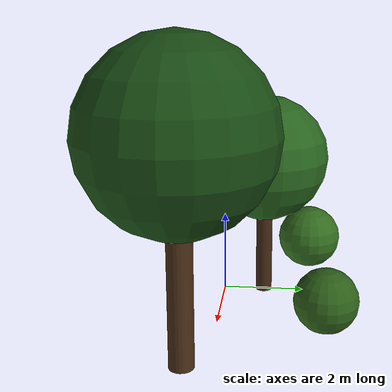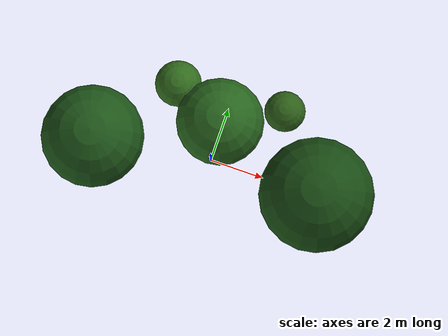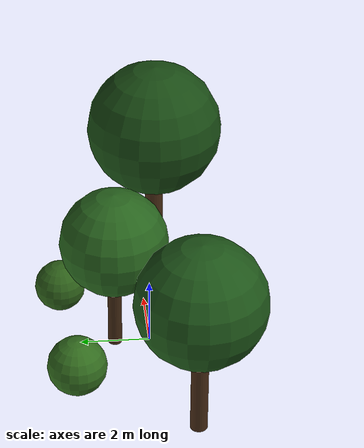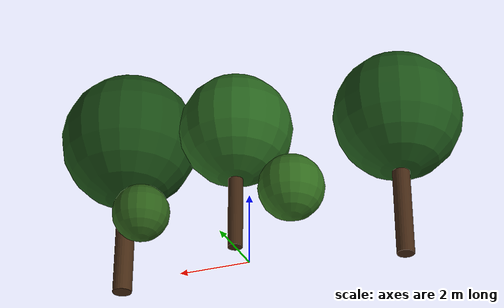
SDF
<?xml version="1.0"?>
<sdf version="1.9">
  <model name="vegetation_cluster">
    <static>true</static>
    <plugin filename="gz-sim-label-system" name="gz::sim::systems::Label"><label>60</label></plugin>
    <link name="trees">
      <visual name="trunk_1"><pose>-4 -1 1.6 0 0 0</pose><geometry><cylinder><radius>0.24</radius><length>3.2</length></cylinder></geometry><material><diffuse>0.27 0.16 0.08 1</diffuse></material></visual>
      <visual name="crown_1"><pose>-4 -1 4.2 0 0 0</pose><geometry><sphere><radius>1.8</radius></sphere></geometry><material><diffuse>0.12 0.34 0.10 1</diffuse></material></visual>
      <visual name="trunk_2"><pose>0 1 1.3 0 0 0</pose><geometry><cylinder><radius>0.20</radius><length>2.6</length></cylinder></geometry><material><diffuse>0.25 0.15 0.07 1</diffuse></material></visual>
      <visual name="crown_2"><pose>0 1 3.5 0 0 0</pose><geometry><sphere><radius>1.55</radius></sphere></geometry><material><diffuse>0.16 0.40 0.12 1</diffuse></material></visual>
      <visual name="trunk_3"><pose>4 -0.5 1.8 0 0 0</pose><geometry><cylinder><radius>0.27</radius><length>3.6</length></cylinder></geometry><material><diffuse>0.28 0.17 0.08 1</diffuse></material></visual>
      <visual name="crown_3"><pose>4 -0.5 4.8 0 0 0</pose><geometry><sphere><radius>2.0</radius></sphere></geometry><material><diffuse>0.10 0.30 0.08 1</diffuse></material></visual>
      <visual name="bush_1"><pose>-2 2.2 0.75 0 0 0</pose><geometry><sphere><radius>0.85</radius></sphere></geometry><material><diffuse>0.20 0.43 0.12 1</diffuse></material></visual>
      <visual name="bush_2"><pose>2 2.5 0.65 0 0 0</pose><geometry><sphere><radius>0.75</radius></sphere></geometry><material><diffuse>0.18 0.38 0.10 1</diffuse></material></visual>
    </link>
  </model>
</sdf>
